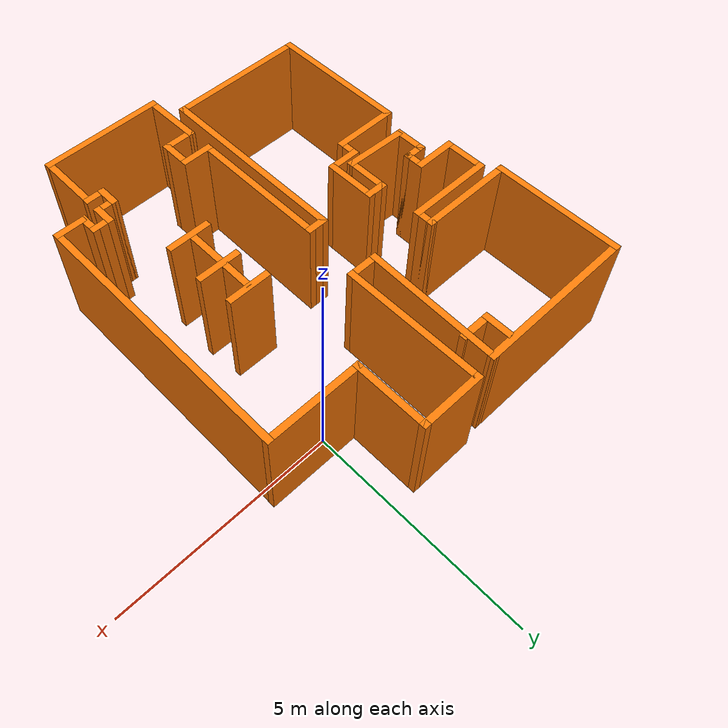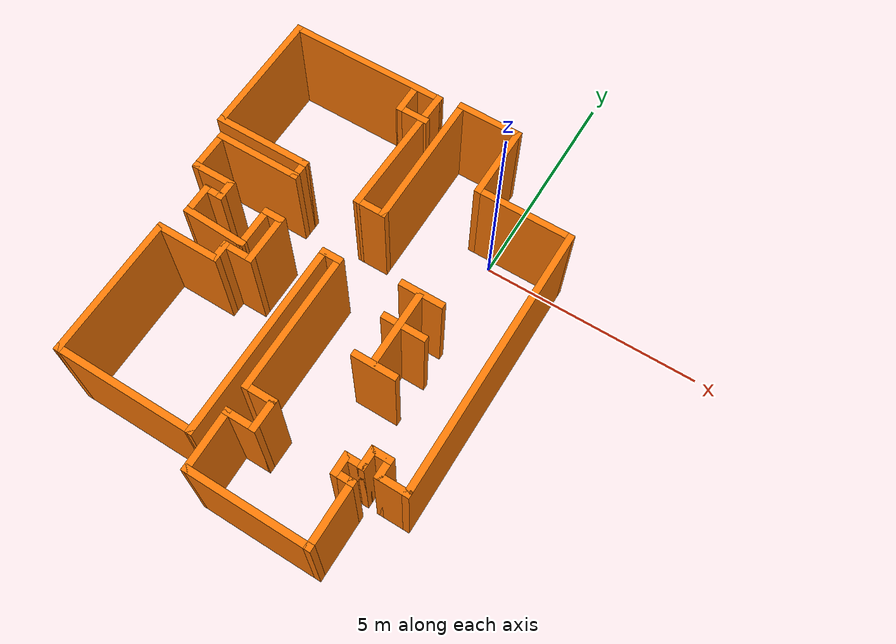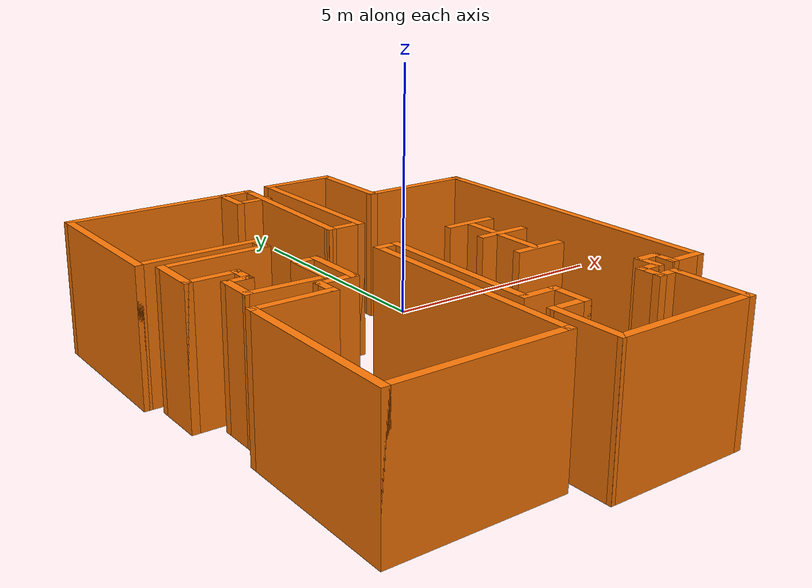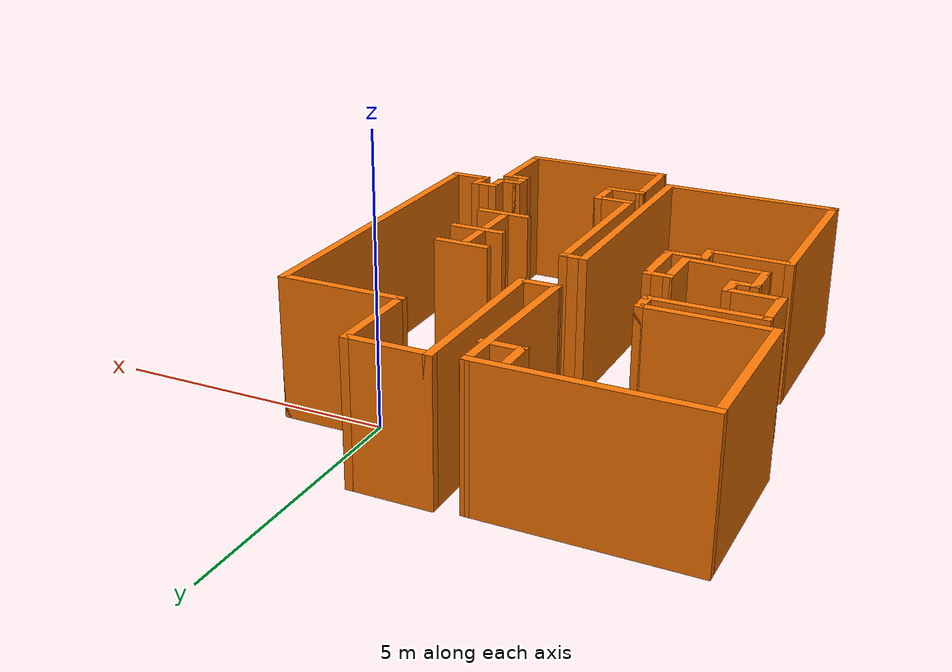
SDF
<?xml version='1.0'?>
<sdf version='1.6'>
  <model name='map_81'>
    <pose frame=''>-2.25854 -2.81927 0 0 -0 0</pose>
    <link name='Wall_0'>
      <collision name='Wall_0_Collision'>
        <geometry>
          <box>
            <size>3.75 0.15 2.5</size>
          </box>
        </geometry>
        <pose frame=''>0 0 1.25 0 -0 0</pose>
      </collision>
      <visual name='Wall_0_Visual'>
        <pose frame=''>0 0 1.25 0 -0 0</pose>
        <geometry>
          <box>
            <size>3.75 0.15 2.5</size>
          </box>
        </geometry>
        <material>
          <script>
            <uri>file://media/materials/scripts/gazebo.material</uri>
            <name>Gazebo/Grey</name>
          </script>
          <ambient>0.996078 0.47451 0.0196078 1</ambient>
        </material>
        <meta>
          <layer>0</layer>
        </meta>
      </visual>
      <pose frame=''>-1.98682 4.6059 0 0 -0 3.14159</pose>
    </link>
    <link name='Wall_1'>
      <collision name='Wall_1_Collision'>
        <geometry>
          <box>
            <size>3 0.15 2.5</size>
          </box>
        </geometry>
        <pose frame=''>0 0 1.25 0 -0 0</pose>
      </collision>
      <visual name='Wall_1_Visual'>
        <pose frame=''>0 0 1.25 0 -0 0</pose>
        <geometry>
          <box>
            <size>3 0.15 2.5</size>
          </box>
        </geometry>
        <material>
          <script>
            <uri>file://media/materials/scripts/gazebo.material</uri>
            <name>Gazebo/Grey</name>
          </script>
          <ambient>0.996078 0.47451 0.0196078 1</ambient>
        </material>
        <meta>
          <layer>0</layer>
        </meta>
      </visual>
      <pose frame=''>-3.78682 3.1809 0 0 -0 -1.5708</pose>
    </link>
    <link name='Wall_10'>
      <collision name='Wall_10_Collision'>
        <geometry>
          <box>
            <size>1 0.15 2.5</size>
          </box>
        </geometry>
        <pose frame=''>0 0 1.25 0 -0 0</pose>
      </collision>
      <visual name='Wall_10_Visual'>
        <pose frame=''>0 0 1.25 0 -0 0</pose>
        <geometry>
          <box>
            <size>1 0.15 2.5</size>
          </box>
        </geometry>
        <material>
          <script>
            <uri>file://media/materials/scripts/gazebo.material</uri>
            <name>Gazebo/Grey</name>
          </script>
          <ambient>0.996078 0.47451 0.0196078 1</ambient>
        </material>
        <meta>
          <layer>0</layer>
        </meta>
      </visual>
      <pose frame=''>-3.11182 0.555897 0 0 -0 0</pose>
    </link>
    <link name='Wall_11'>
      <collision name='Wall_11_Collision'>
        <geometry>
          <box>
            <size>0.5 0.15 2.5</size>
          </box>
        </geometry>
        <pose frame=''>0 0 1.25 0 -0 0</pose>
      </collision>
      <visual name='Wall_11_Visual'>
        <pose frame=''>0 0 1.25 0 -0 0</pose>
        <geometry>
          <box>
            <size>0.5 0.15 2.5</size>
          </box>
        </geometry>
        <material>
          <script>
            <uri>file://media/materials/scripts/gazebo.material</uri>
            <name>Gazebo/Grey</name>
          </script>
          <ambient>0.996078 0.47451 0.0196078 1</ambient>
        </material>
        <meta>
          <layer>0</layer>
        </meta>
      </visual>
      <pose frame=''>-2.68682 0.380897 0 0 -0 -1.5708</pose>
    </link>
    <link name='Wall_12'>
      <collision name='Wall_12_Collision'>
        <geometry>
          <box>
            <size>0.5 0.15 2.5</size>
          </box>
        </geometry>
        <pose frame=''>0 0 1.25 0 -0 0</pose>
      </collision>
      <visual name='Wall_12_Visual'>
        <pose frame=''>0 0 1.25 0 -0 0</pose>
        <geometry>
          <box>
            <size>0.5 0.15 2.5</size>
          </box>
        </geometry>
        <material>
          <script>
            <uri>file://media/materials/scripts/gazebo.material</uri>
            <name>Gazebo/Grey</name>
          </script>
          <ambient>0.996078 0.47451 0.0196078 1</ambient>
        </material>
        <meta>
          <layer>0</layer>
        </meta>
      </visual>
      <pose frame=''>-2.86182 0.205897 0 0 -0 3.14159</pose>
    </link>
    <link name='Wall_13'>
      <collision name='Wall_13_Collision'>
        <geometry>
          <box>
            <size>0.75 0.15 2.5</size>
          </box>
        </geometry>
        <pose frame=''>0 0 1.25 0 -0 0</pose>
      </collision>
      <visual name='Wall_13_Visual'>
        <pose frame=''>0 0 1.25 0 -0 0</pose>
        <geometry>
          <box>
            <size>0.75 0.15 2.5</size>
          </box>
        </geometry>
        <material>
          <script>
            <uri>file://media/materials/scripts/gazebo.material</uri>
            <name>Gazebo/Grey</name>
          </script>
          <ambient>0.996078 0.47451 0.0196078 1</ambient>
        </material>
        <meta>
          <layer>0</layer>
        </meta>
      </visual>
      <pose frame=''>-3.03682 -0.094103 0 0 -0 -1.5708</pose>
    </link>
    <link name='Wall_14'>
      <collision name='Wall_14_Collision'>
        <geometry>
          <box>
            <size>1.50105 0.15 2.5</size>
          </box>
        </geometry>
        <pose frame=''>0 0 1.25 0 -0 0</pose>
      </collision>
      <visual name='Wall_14_Visual'>
        <pose frame=''>0 0 1.25 0 -0 0</pose>
        <geometry>
          <box>
            <size>1.50105 0.15 2.5</size>
          </box>
        </geometry>
        <material>
          <script>
            <uri>file://media/materials/scripts/gazebo.material</uri>
            <name>Gazebo/Grey</name>
          </script>
          <ambient>0.996078 0.47451 0.0196078 1</ambient>
        </material>
        <meta>
          <layer>0</layer>
        </meta>
      </visual>
      <pose frame=''>-2.36182 -0.420703 0 0 -0 -0.039387</pose>
    </link>
    <link name='Wall_18'>
      <collision name='Wall_18_Collision'>
        <geometry>
          <box>
            <size>0.75 0.15 2.5</size>
          </box>
        </geometry>
        <pose frame=''>0 0 1.25 0 -0 0</pose>
      </collision>
      <visual name='Wall_18_Visual'>
        <pose frame=''>0 0 1.25 0 -0 0</pose>
        <geometry>
          <box>
            <size>0.75 0.15 2.5</size>
          </box>
        </geometry>
        <material>
          <script>
            <uri>file://media/materials/scripts/gazebo.material</uri>
            <name>Gazebo/Grey</name>
          </script>
          <ambient>0.996078 0.47451 0.0196078 1</ambient>
        </material>
        <meta>
          <layer>0</layer>
        </meta>
      </visual>
      <pose frame=''>-1.63682 -0.644103 0 0 -0 3.14159</pose>
    </link>
    <link name='Wall_19'>
      <collision name='Wall_19_Collision'>
        <geometry>
          <box>
            <size>0.5 0.15 2.5</size>
          </box>
        </geometry>
        <pose frame=''>0 0 1.25 0 -0 0</pose>
      </collision>
      <visual name='Wall_19_Visual'>
        <pose frame=''>0 0 1.25 0 -0 0</pose>
        <geometry>
          <box>
            <size>0.5 0.15 2.5</size>
          </box>
        </geometry>
        <material>
          <script>
            <uri>file://media/materials/scripts/gazebo.material</uri>
            <name>Gazebo/Grey</name>
          </script>
          <ambient>0.996078 0.47451 0.0196078 1</ambient>
        </material>
        <meta>
          <layer>0</layer>
        </meta>
      </visual>
      <pose frame=''>-1.93682 -0.819103 0 0 -0 -1.5708</pose>
    </link>
    <link name='Wall_2'>
      <collision name='Wall_2_Collision'>
        <geometry>
          <box>
            <size>2.25 0.15 2.5</size>
          </box>
        </geometry>
        <pose frame=''>0 0 1.25 0 -0 0</pose>
      </collision>
      <visual name='Wall_2_Visual'>
        <pose frame=''>0 0 1.25 0 -0 0</pose>
        <geometry>
          <box>
            <size>2.25 0.15 2.5</size>
          </box>
        </geometry>
        <material>
          <script>
            <uri>file://media/materials/scripts/gazebo.material</uri>
            <name>Gazebo/Grey</name>
          </script>
          <ambient>0.996078 0.47451 0.0196078 1</ambient>
        </material>
        <meta>
          <layer>0</layer>
        </meta>
      </visual>
      <pose frame=''>-2.73682 1.7559 0 0 -0 0</pose>
    </link>
    <link name='Wall_20'>
      <collision name='Wall_20_Collision'>
        <geometry>
          <box>
            <size>1.5 0.15 2.5</size>
          </box>
        </geometry>
        <pose frame=''>0 0 1.25 0 -0 0</pose>
      </collision>
      <visual name='Wall_20_Visual'>
        <pose frame=''>0 0 1.25 0 -0 0</pose>
        <geometry>
          <box>
            <size>1.5 0.15 2.5</size>
          </box>
        </geometry>
        <material>
          <script>
            <uri>file://media/materials/scripts/gazebo.material</uri>
            <name>Gazebo/Grey</name>
          </script>
          <ambient>0.996078 0.47451 0.0196078 1</ambient>
        </material>
        <meta>
          <layer>0</layer>
        </meta>
      </visual>
      <pose frame=''>-2.61182 -0.994103 0 0 -0 3.14159</pose>
    </link>
    <link name='Wall_21'>
      <collision name='Wall_21_Collision'>
        <geometry>
          <box>
            <size>3.25 0.15 2.5</size>
          </box>
        </geometry>
        <pose frame=''>0 0 1.25 0 -0 0</pose>
      </collision>
      <visual name='Wall_21_Visual'>
        <pose frame=''>0 0 1.25 0 -0 0</pose>
        <geometry>
          <box>
            <size>3.25 0.15 2.5</size>
          </box>
        </geometry>
        <material>
          <script>
            <uri>file://media/materials/scripts/gazebo.material</uri>
            <name>Gazebo/Grey</name>
          </script>
          <ambient>0.996078 0.47451 0.0196078 1</ambient>
        </material>
        <meta>
          <layer>0</layer>
        </meta>
      </visual>
      <pose frame=''>-3.28682 -2.5441 0 0 -0 -1.5708</pose>
    </link>
    <link name='Wall_22'>
      <collision name='Wall_22_Collision'>
        <geometry>
          <box>
            <size>3.25 0.15 2.5</size>
          </box>
        </geometry>
        <pose frame=''>0 0 1.25 0 -0 0</pose>
      </collision>
      <visual name='Wall_22_Visual'>
        <pose frame=''>0 0 1.25 0 -0 0</pose>
        <geometry>
          <box>
            <size>3.25 0.15 2.5</size>
          </box>
        </geometry>
        <material>
          <script>
            <uri>file://media/materials/scripts/gazebo.material</uri>
            <name>Gazebo/Grey</name>
          </script>
          <ambient>0.996078 0.47451 0.0196078 1</ambient>
        </material>
        <meta>
          <layer>0</layer>
        </meta>
      </visual>
      <pose frame=''>-1.73682 -4.0941 0 0 -0 0</pose>
    </link>
    <link name='Wall_23'>
      <collision name='Wall_23_Collision'>
        <geometry>
          <box>
            <size>4.5 0.15 2.5</size>
          </box>
        </geometry>
        <pose frame=''>0 0 1.25 0 -0 0</pose>
      </collision>
      <visual name='Wall_23_Visual'>
        <pose frame=''>0 0 1.25 0 -0 0</pose>
        <geometry>
          <box>
            <size>4.5 0.15 2.5</size>
          </box>
        </geometry>
        <material>
          <script>
            <uri>file://media/materials/scripts/gazebo.material</uri>
            <name>Gazebo/Grey</name>
          </script>
          <ambient>0.996078 0.47451 0.0196078 1</ambient>
        </material>
        <meta>
          <layer>0</layer>
        </meta>
      </visual>
      <pose frame=''>-0.186823 -1.9191 0 0 -0 1.5708</pose>
    </link>
    <link name='Wall_25'>
      <collision name='Wall_25_Collision'>
        <geometry>
          <box>
            <size>0.5 0.15 2.5</size>
          </box>
        </geometry>
        <pose frame=''>0 0 1.25 0 -0 0</pose>
      </collision>
      <visual name='Wall_25_Visual'>
        <pose frame=''>0 0 1.25 0 -0 0</pose>
        <geometry>
          <box>
            <size>0.5 0.15 2.5</size>
          </box>
        </geometry>
        <material>
          <script>
            <uri>file://media/materials/scripts/gazebo.material</uri>
            <name>Gazebo/Grey</name>
          </script>
          <ambient>0.996078 0.47451 0.0196078 1</ambient>
        </material>
        <meta>
          <layer>0</layer>
        </meta>
      </visual>
      <pose frame=''>-0.011823 0.255897 0 0 -0 0</pose>
    </link>
    <link name='Wall_26'>
      <collision name='Wall_26_Collision'>
        <geometry>
          <box>
            <size>3.25 0.15 2.5</size>
          </box>
        </geometry>
        <pose frame=''>0 0 1.25 0 -0 0</pose>
      </collision>
      <visual name='Wall_26_Visual'>
        <pose frame=''>0 0 1.25 0 -0 0</pose>
        <geometry>
          <box>
            <size>3.25 0.15 2.5</size>
          </box>
        </geometry>
        <material>
          <script>
            <uri>file://media/materials/scripts/gazebo.material</uri>
            <name>Gazebo/Grey</name>
          </script>
          <ambient>0.996078 0.47451 0.0196078 1</ambient>
        </material>
        <meta>
          <layer>0</layer>
        </meta>
      </visual>
      <pose frame=''>0.163177 -1.2941 0 0 -0 -1.5708</pose>
    </link>
    <link name='Wall_27'>
      <collision name='Wall_27_Collision'>
        <geometry>
          <box>
            <size>0.75 0.15 2.5</size>
          </box>
        </geometry>
        <pose frame=''>0 0 1.25 0 -0 0</pose>
      </collision>
      <visual name='Wall_27_Visual'>
        <pose frame=''>0 0 1.25 0 -0 0</pose>
        <geometry>
          <box>
            <size>0.75 0.15 2.5</size>
          </box>
        </geometry>
        <material>
          <script>
            <uri>file://media/materials/scripts/gazebo.material</uri>
            <name>Gazebo/Grey</name>
          </script>
          <ambient>0.996078 0.47451 0.0196078 1</ambient>
        </material>
        <meta>
          <layer>0</layer>
        </meta>
      </visual>
      <pose frame=''>0.463177 -2.8441 0 0 -0 0</pose>
    </link>
    <link name='Wall_28'>
      <collision name='Wall_28_Collision'>
        <geometry>
          <box>
            <size>0.75 0.15 2.5</size>
          </box>
        </geometry>
        <pose frame=''>0 0 1.25 0 -0 0</pose>
      </collision>
      <visual name='Wall_28_Visual'>
        <pose frame=''>0 0 1.25 0 -0 0</pose>
        <geometry>
          <box>
            <size>0.75 0.15 2.5</size>
          </box>
        </geometry>
        <material>
          <script>
            <uri>file://media/materials/scripts/gazebo.material</uri>
            <name>Gazebo/Grey</name>
          </script>
          <ambient>0.996078 0.47451 0.0196078 1</ambient>
        </material>
        <meta>
          <layer>0</layer>
        </meta>
      </visual>
      <pose frame=''>0.763177 -3.1441 0 0 -0 -1.5708</pose>
    </link>
    <link name='Wall_3'>
      <collision name='Wall_3_Collision'>
        <geometry>
          <box>
            <size>0.5 0.15 2.5</size>
          </box>
        </geometry>
        <pose frame=''>0 0 1.25 0 -0 0</pose>
      </collision>
      <visual name='Wall_3_Visual'>
        <pose frame=''>0 0 1.25 0 -0 0</pose>
        <geometry>
          <box>
            <size>0.5 0.15 2.5</size>
          </box>
        </geometry>
        <material>
          <script>
            <uri>file://media/materials/scripts/gazebo.material</uri>
            <name>Gazebo/Grey</name>
          </script>
          <ambient>0.996078 0.47451 0.0196078 1</ambient>
        </material>
        <meta>
          <layer>0</layer>
        </meta>
      </visual>
      <pose frame=''>-1.68682 1.5809 0 0 -0 -1.5708</pose>
    </link>
    <link name='Wall_33'>
      <collision name='Wall_33_Collision'>
        <geometry>
          <box>
            <size>2.80373 0.15 2.5</size>
          </box>
        </geometry>
        <pose frame=''>0 0 1.25 0 -0 0</pose>
      </collision>
      <visual name='Wall_33_Visual'>
        <pose frame=''>0 0 1.25 0 -0 0</pose>
        <geometry>
          <box>
            <size>2.80373 0.15 2.5</size>
          </box>
        </geometry>
        <material>
          <script>
            <uri>file://media/materials/scripts/gazebo.material</uri>
            <name>Gazebo/Grey</name>
          </script>
          <ambient>0.996078 0.47451 0.0196078 1</ambient>
        </material>
        <meta>
          <layer>0</layer>
        </meta>
      </visual>
      <pose frame=''>1.51022 -4.69939 0 0 -0 0</pose>
    </link>
    <link name='Wall_34'>
      <collision name='Wall_34_Collision'>
        <geometry>
          <box>
            <size>1.5 0.15 2.5</size>
          </box>
        </geometry>
        <pose frame=''>0 0 1.25 0 -0 0</pose>
      </collision>
      <visual name='Wall_34_Visual'>
        <pose frame=''>0 0 1.25 0 -0 0</pose>
        <geometry>
          <box>
            <size>1.5 0.15 2.5</size>
          </box>
        </geometry>
        <material>
          <script>
            <uri>file://media/materials/scripts/gazebo.material</uri>
            <name>Gazebo/Grey</name>
          </script>
          <ambient>0.996078 0.47451 0.0196078 1</ambient>
        </material>
        <meta>
          <layer>0</layer>
        </meta>
      </visual>
      <pose frame=''>2.83682 -4.0244 0 0 -0 1.5708</pose>
    </link>
    <link name='Wall_35'>
      <collision name='Wall_35_Collision'>
        <geometry>
          <box>
            <size>0.5 0.15 2.5</size>
          </box>
        </geometry>
        <pose frame=''>0 0 1.25 0 -0 0</pose>
      </collision>
      <visual name='Wall_35_Visual'>
        <pose frame=''>0 0 1.25 0 -0 0</pose>
        <geometry>
          <box>
            <size>0.5 0.15 2.5</size>
          </box>
        </geometry>
        <material>
          <script>
            <uri>file://media/materials/scripts/gazebo.material</uri>
            <name>Gazebo/Grey</name>
          </script>
          <ambient>0.996078 0.47451 0.0196078 1</ambient>
        </material>
        <meta>
          <layer>0</layer>
        </meta>
      </visual>
      <pose frame=''>2.66182 -3.34939 0 0 -0 3.14159</pose>
    </link>
    <link name='Wall_36'>
      <collision name='Wall_36_Collision'>
        <geometry>
          <box>
            <size>0.5 0.15 2.5</size>
          </box>
        </geometry>
        <pose frame=''>0 0 1.25 0 -0 0</pose>
      </collision>
      <visual name='Wall_36_Visual'>
        <pose frame=''>0 0 1.25 0 -0 0</pose>
        <geometry>
          <box>
            <size>0.5 0.15 2.5</size>
          </box>
        </geometry>
        <material>
          <script>
            <uri>file://media/materials/scripts/gazebo.material</uri>
            <name>Gazebo/Grey</name>
          </script>
          <ambient>0.996078 0.47451 0.0196078 1</ambient>
        </material>
        <meta>
          <layer>0</layer>
        </meta>
      </visual>
      <pose frame=''>2.48682 -3.17439 0 0 -0 1.5708</pose>
    </link>
    <link name='Wall_37'>
      <collision name='Wall_37_Collision'>
        <geometry>
          <box>
            <size>0.5 0.15 2.5</size>
          </box>
        </geometry>
        <pose frame=''>0 0 1.25 0 -0 0</pose>
      </collision>
      <visual name='Wall_37_Visual'>
        <pose frame=''>0 0 1.25 0 -0 0</pose>
        <geometry>
          <box>
            <size>0.5 0.15 2.5</size>
          </box>
        </geometry>
        <material>
          <script>
            <uri>file://media/materials/scripts/gazebo.material</uri>
            <name>Gazebo/Grey</name>
          </script>
          <ambient>0.996078 0.47451 0.0196078 1</ambient>
        </material>
        <meta>
          <layer>0</layer>
        </meta>
      </visual>
      <pose frame=''>2.66182 -2.99939 0 0 -0 0</pose>
    </link>
    <link name='Wall_38'>
      <collision name='Wall_38_Collision'>
        <geometry>
          <box>
            <size>0.5 0.15 2.5</size>
          </box>
        </geometry>
        <pose frame=''>0 0 1.25 0 -0 0</pose>
      </collision>
      <visual name='Wall_38_Visual'>
        <pose frame=''>0 0 1.25 0 -0 0</pose>
        <geometry>
          <box>
            <size>0.5 0.15 2.5</size>
          </box>
        </geometry>
        <material>
          <script>
            <uri>file://media/materials/scripts/gazebo.material</uri>
            <name>Gazebo/Grey</name>
          </script>
          <ambient>0.996078 0.47451 0.0196078 1</ambient>
        </material>
        <meta>
          <layer>0</layer>
        </meta>
      </visual>
      <pose frame=''>2.83682 -2.82439 0 0 -0 1.5708</pose>
    </link>
    <link name='Wall_39'>
      <collision name='Wall_39_Collision'>
        <geometry>
          <box>
            <size>0.5 0.15 2.5</size>
          </box>
        </geometry>
        <pose frame=''>0 0 1.25 0 -0 0</pose>
      </collision>
      <visual name='Wall_39_Visual'>
        <pose frame=''>0 0 1.25 0 -0 0</pose>
        <geometry>
          <box>
            <size>0.5 0.15 2.5</size>
          </box>
        </geometry>
        <material>
          <script>
            <uri>file://media/materials/scripts/gazebo.material</uri>
            <name>Gazebo/Grey</name>
          </script>
          <ambient>0.996078 0.47451 0.0196078 1</ambient>
        </material>
        <meta>
          <layer>0</layer>
        </meta>
      </visual>
      <pose frame=''>3.01182 -2.6494 0 0 -0 0</pose>
    </link>
    <link name='Wall_40'>
      <collision name='Wall_40_Collision'>
        <geometry>
          <box>
            <size>0.5 0.15 2.5</size>
          </box>
        </geometry>
        <pose frame=''>0 0 1.25 0 -0 0</pose>
      </collision>
      <visual name='Wall_40_Visual'>
        <pose frame=''>0 0 1.25 0 -0 0</pose>
        <geometry>
          <box>
            <size>0.5 0.15 2.5</size>
          </box>
        </geometry>
        <material>
          <script>
            <uri>file://media/materials/scripts/gazebo.material</uri>
            <name>Gazebo/Grey</name>
          </script>
          <ambient>0.996078 0.47451 0.0196078 1</ambient>
        </material>
        <meta>
          <layer>0</layer>
        </meta>
      </visual>
      <pose frame=''>3.18682 -2.82439 0 0 -0 -1.5708</pose>
    </link>
    <link name='Wall_41'>
      <collision name='Wall_41_Collision'>
        <geometry>
          <box>
            <size>0.75 0.15 2.5</size>
          </box>
        </geometry>
        <pose frame=''>0 0 1.25 0 -0 0</pose>
      </collision>
      <visual name='Wall_41_Visual'>
        <pose frame=''>0 0 1.25 0 -0 0</pose>
        <geometry>
          <box>
            <size>0.75 0.15 2.5</size>
          </box>
        </geometry>
        <material>
          <script>
            <uri>file://media/materials/scripts/gazebo.material</uri>
            <name>Gazebo/Grey</name>
          </script>
          <ambient>0.996078 0.47451 0.0196078 1</ambient>
        </material>
        <meta>
          <layer>0</layer>
        </meta>
      </visual>
      <pose frame=''>3.48682 -2.99939 0 0 -0 0</pose>
    </link>
    <link name='Wall_42'>
      <collision name='Wall_42_Collision'>
        <geometry>
          <box>
            <size>6.25 0.15 2.5</size>
          </box>
        </geometry>
        <pose frame=''>0 0 1.25 0 -0 0</pose>
      </collision>
      <visual name='Wall_42_Visual'>
        <pose frame=''>0 0 1.25 0 -0 0</pose>
        <geometry>
          <box>
            <size>6.25 0.15 2.5</size>
          </box>
        </geometry>
        <material>
          <script>
            <uri>file://media/materials/scripts/gazebo.material</uri>
            <name>Gazebo/Grey</name>
          </script>
          <ambient>0.996078 0.47451 0.0196078 1</ambient>
        </material>
        <meta>
          <layer>0</layer>
        </meta>
      </visual>
      <pose frame=''>3.78682 0.050606 0 0 -0 1.5708</pose>
    </link>
    <link name='Wall_43'>
      <collision name='Wall_43_Collision'>
        <geometry>
          <box>
            <size>2.25 0.15 2.5</size>
          </box>
        </geometry>
        <pose frame=''>0 0 1.25 0 -0 0</pose>
      </collision>
      <visual name='Wall_43_Visual'>
        <pose frame=''>0 0 1.25 0 -0 0</pose>
        <geometry>
          <box>
            <size>2.25 0.15 2.5</size>
          </box>
        </geometry>
        <material>
          <script>
            <uri>file://media/materials/scripts/gazebo.material</uri>
            <name>Gazebo/Grey</name>
          </script>
          <ambient>0.996078 0.47451 0.0196078 1</ambient>
        </material>
        <meta>
          <layer>0</layer>
        </meta>
      </visual>
      <pose frame=''>2.73682 3.10061 0 0 -0 3.14159</pose>
    </link>
    <link name='Wall_44'>
      <collision name='Wall_44_Collision'>
        <geometry>
          <box>
            <size>1.75 0.15 2.5</size>
          </box>
        </geometry>
        <pose frame=''>0 0 1.25 0 -0 0</pose>
      </collision>
      <visual name='Wall_44_Visual'>
        <pose frame=''>0 0 1.25 0 -0 0</pose>
        <geometry>
          <box>
            <size>1.75 0.15 2.5</size>
          </box>
        </geometry>
        <material>
          <script>
            <uri>file://media/materials/scripts/gazebo.material</uri>
            <name>Gazebo/Grey</name>
          </script>
          <ambient>0.996078 0.47451 0.0196078 1</ambient>
        </material>
        <meta>
          <layer>0</layer>
        </meta>
      </visual>
      <pose frame=''>1.68682 3.90061 0 0 -0 1.5708</pose>
    </link>
    <link name='Wall_45'>
      <collision name='Wall_45_Collision'>
        <geometry>
          <box>
            <size>1.5 0.15 2.5</size>
          </box>
        </geometry>
        <pose frame=''>0 0 1.25 0 -0 0</pose>
      </collision>
      <visual name='Wall_45_Visual'>
        <pose frame=''>0 0 1.25 0 -0 0</pose>
        <geometry>
          <box>
            <size>1.5 0.15 2.5</size>
          </box>
        </geometry>
        <material>
          <script>
            <uri>file://media/materials/scripts/gazebo.material</uri>
            <name>Gazebo/Grey</name>
          </script>
          <ambient>0.996078 0.47451 0.0196078 1</ambient>
        </material>
        <meta>
          <layer>0</layer>
        </meta>
      </visual>
      <pose frame=''>1.01182 4.70061 0 0 -0 3.14159</pose>
    </link>
    <link name='Wall_46'>
      <collision name='Wall_46_Collision'>
        <geometry>
          <box>
            <size>3.25 0.15 2.5</size>
          </box>
        </geometry>
        <pose frame=''>0 0 1.25 0 -0 0</pose>
      </collision>
      <visual name='Wall_46_Visual'>
        <pose frame=''>0 0 1.25 0 -0 0</pose>
        <geometry>
          <box>
            <size>3.25 0.15 2.5</size>
          </box>
        </geometry>
        <material>
          <script>
            <uri>file://media/materials/scripts/gazebo.material</uri>
            <name>Gazebo/Grey</name>
          </script>
          <ambient>0.996078 0.47451 0.0196078 1</ambient>
        </material>
        <meta>
          <layer>0</layer>
        </meta>
      </visual>
      <pose frame=''>0.336822 3.15061 0 0 -0 -1.5708</pose>
    </link>
    <link name='Wall_49'>
      <collision name='Wall_49_Collision'>
        <geometry>
          <box>
            <size>0.75 0.15 2.5</size>
          </box>
        </geometry>
        <pose frame=''>0 0 1.25 0 -0 0</pose>
      </collision>
      <visual name='Wall_49_Visual'>
        <pose frame=''>0 0 1.25 0 -0 0</pose>
        <geometry>
          <box>
            <size>0.75 0.15 2.5</size>
          </box>
        </geometry>
        <material>
          <script>
            <uri>file://media/materials/scripts/gazebo.material</uri>
            <name>Gazebo/Grey</name>
          </script>
          <ambient>0.996078 0.47451 0.0196078 1</ambient>
        </material>
        <meta>
          <layer>0</layer>
        </meta>
      </visual>
      <pose frame=''>0.036822 1.60061 0 0 -0 3.14159</pose>
    </link>
    <link name='Wall_50'>
      <collision name='Wall_50_Collision'>
        <geometry>
          <box>
            <size>3.15626 0.15 2.5</size>
          </box>
        </geometry>
        <pose frame=''>0 0 1.25 0 -0 0</pose>
      </collision>
      <visual name='Wall_50_Visual'>
        <pose frame=''>0 0 1.25 0 -0 0</pose>
        <geometry>
          <box>
            <size>3.15626 0.15 2.5</size>
          </box>
        </geometry>
        <material>
          <script>
            <uri>file://media/materials/scripts/gazebo.material</uri>
            <name>Gazebo/Grey</name>
          </script>
          <ambient>0.996078 0.47451 0.0196078 1</ambient>
        </material>
        <meta>
          <layer>0</layer>
        </meta>
      </visual>
      <pose frame=''>-0.225 3.10325 0 0 -0 1.5454</pose>
    </link>
    <link name='Wall_52'>
      <collision name='Wall_52_Collision'>
        <geometry>
          <box>
            <size>0.75 0.15 2.5</size>
          </box>
        </geometry>
        <pose frame=''>0 0 1.25 0 -0 0</pose>
      </collision>
      <visual name='Wall_52_Visual'>
        <pose frame=''>0 0 1.25 0 -0 0</pose>
        <geometry>
          <box>
            <size>0.75 0.15 2.5</size>
          </box>
        </geometry>
        <material>
          <script>
            <uri>file://media/materials/scripts/gazebo.material</uri>
            <name>Gazebo/Grey</name>
          </script>
          <ambient>0.996078 0.47451 0.0196078 1</ambient>
        </material>
        <meta>
          <layer>0</layer>
        </meta>
      </visual>
      <pose frame=''>-0.745427 4.2793 0 0 -0 -1.5708</pose>
    </link>
    <link name='Wall_55'>
      <collision name='Wall_55_Collision'>
        <geometry>
          <box>
            <size>0.75 0.15 2.5</size>
          </box>
        </geometry>
        <pose frame=''>0 0 1.25 0 -0 0</pose>
      </collision>
      <visual name='Wall_55_Visual'>
        <pose frame=''>0 0 1.25 0 -0 0</pose>
        <geometry>
          <box>
            <size>0.75 0.15 2.5</size>
          </box>
        </geometry>
        <material>
          <script>
            <uri>file://media/materials/scripts/gazebo.material</uri>
            <name>Gazebo/Grey</name>
          </script>
          <ambient>0.996078 0.47451 0.0196078 1</ambient>
        </material>
        <meta>
          <layer>0</layer>
        </meta>
      </visual>
      <pose frame=''>-0.445427 3.9793 0 0 -0 0</pose>
    </link>
    <link name='Wall_57'>
      <collision name='Wall_57_Collision'>
        <geometry>
          <box>
            <size>1 0.15 2.5</size>
          </box>
        </geometry>
        <pose frame=''>0 0 1.25 0 -0 0</pose>
      </collision>
      <visual name='Wall_57_Visual'>
        <pose frame=''>0 0 1.25 0 -0 0</pose>
        <geometry>
          <box>
            <size>1 0.15 2.5</size>
          </box>
        </geometry>
        <material>
          <script>
            <uri>file://media/materials/scripts/gazebo.material</uri>
            <name>Gazebo/Grey</name>
          </script>
          <ambient>0.996078 0.47451 0.0196078 1</ambient>
        </material>
        <meta>
          <layer>0</layer>
        </meta>
      </visual>
      <pose frame=''>-1.68682 -0.022303 0 0 -0 1.5708</pose>
    </link>
    <link name='Wall_58'>
      <collision name='Wall_58_Collision'>
        <geometry>
          <box>
            <size>0.5 0.15 2.5</size>
          </box>
        </geometry>
        <pose frame=''>0 0 1.25 0 -0 0</pose>
      </collision>
      <visual name='Wall_58_Visual'>
        <pose frame=''>0 0 1.25 0 -0 0</pose>
        <geometry>
          <box>
            <size>0.5 0.15 2.5</size>
          </box>
        </geometry>
        <material>
          <script>
            <uri>file://media/materials/scripts/gazebo.material</uri>
            <name>Gazebo/Grey</name>
          </script>
          <ambient>0.996078 0.47451 0.0196078 1</ambient>
        </material>
        <meta>
          <layer>0</layer>
        </meta>
      </visual>
      <pose frame=''>-1.51182 0.402696 0 0 -0 0</pose>
    </link>
    <link name='Wall_59'>
      <collision name='Wall_59_Collision'>
        <geometry>
          <box>
            <size>1.1968 0.15 2.5</size>
          </box>
        </geometry>
        <pose frame=''>0 0 1.25 0 -0 0</pose>
      </collision>
      <visual name='Wall_59_Visual'>
        <pose frame=''>0 0 1.25 0 -0 0</pose>
        <geometry>
          <box>
            <size>1.1968 0.15 2.5</size>
          </box>
        </geometry>
        <material>
          <script>
            <uri>file://media/materials/scripts/gazebo.material</uri>
            <name>Gazebo/Grey</name>
          </script>
          <ambient>0.996078 0.47451 0.0196078 1</ambient>
        </material>
        <meta>
          <layer>0</layer>
        </meta>
      </visual>
      <pose frame=''>-1.33682 -0.120703 0 0 -0 -1.5708</pose>
    </link>
    <link name='Wall_8'>
      <collision name='Wall_8_Collision'>
        <geometry>
          <box>
            <size>2 0.15 2.5</size>
          </box>
        </geometry>
        <pose frame=''>0 0 1.25 0 -0 0</pose>
      </collision>
      <visual name='Wall_8_Visual'>
        <pose frame=''>0 0 1.25 0 -0 0</pose>
        <geometry>
          <box>
            <size>2 0.15 2.5</size>
          </box>
        </geometry>
        <material>
          <script>
            <uri>file://media/materials/scripts/gazebo.material</uri>
            <name>Gazebo/Grey</name>
          </script>
          <ambient>0.996078 0.47451 0.0196078 1</ambient>
        </material>
        <meta>
          <layer>0</layer>
        </meta>
      </visual>
      <pose frame=''>-2.61182 1.4059 0 0 -0 3.14159</pose>
    </link>
    <link name='Wall_80'>
      <collision name='Wall_80_Collision'>
        <geometry>
          <box>
            <size>0.75 0.15 2.5</size>
          </box>
        </geometry>
        <pose frame=''>0 0 1.25 0 -0 0</pose>
      </collision>
      <visual name='Wall_80_Visual'>
        <pose frame=''>0 0 1.25 0 -0 0</pose>
        <geometry>
          <box>
            <size>0.75 0.15 2.5</size>
          </box>
        </geometry>
        <material>
          <script>
            <uri>file://media/materials/scripts/gazebo.material</uri>
            <name>Gazebo/Grey</name>
          </script>
          <ambient>0.996078 0.47451 0.0196078 1</ambient>
        </material>
        <meta>
          <layer>0</layer>
        </meta>
      </visual>
      <pose frame=''>0.463177 -3.4441 0 0 -0 3.14159</pose>
    </link>
    <link name='Wall_81'>
      <collision name='Wall_81_Collision'>
        <geometry>
          <box>
            <size>1.40546 0.15 2.5</size>
          </box>
        </geometry>
        <pose frame=''>0 0 1.25 0 -0 0</pose>
      </collision>
      <visual name='Wall_81_Visual'>
        <pose frame=''>0 0 1.25 0 -0 0</pose>
        <geometry>
          <box>
            <size>1.40546 0.15 2.5</size>
          </box>
        </geometry>
        <material>
          <script>
            <uri>file://media/materials/scripts/gazebo.material</uri>
            <name>Gazebo/Grey</name>
          </script>
          <ambient>0.996078 0.47451 0.0196078 1</ambient>
        </material>
        <meta>
          <layer>0</layer>
        </meta>
      </visual>
      <pose frame=''>0.1734 -4.07175 0 0 -0 -1.55451</pose>
    </link>
    <link name='Wall_9'>
      <collision name='Wall_9_Collision'>
        <geometry>
          <box>
            <size>1 0.15 2.5</size>
          </box>
        </geometry>
        <pose frame=''>0 0 1.25 0 -0 0</pose>
      </collision>
      <visual name='Wall_9_Visual'>
        <pose frame=''>0 0 1.25 0 -0 0</pose>
        <geometry>
          <box>
            <size>1 0.15 2.5</size>
          </box>
        </geometry>
        <material>
          <script>
            <uri>file://media/materials/scripts/gazebo.material</uri>
            <name>Gazebo/Grey</name>
          </script>
          <ambient>0.996078 0.47451 0.0196078 1</ambient>
        </material>
        <meta>
          <layer>0</layer>
        </meta>
      </visual>
      <pose frame=''>-3.53682 0.980897 0 0 -0 -1.5708</pose>
    </link>
    <link name='Wall_93'>
      <collision name='Wall_93_Collision'>
        <geometry>
          <box>
            <size>1 0.15 2.5</size>
          </box>
        </geometry>
        <pose frame=''>0 0 1.25 0 -0 0</pose>
      </collision>
      <visual name='Wall_93_Visual'>
        <pose frame=''>0 0 1.25 0 -0 0</pose>
        <geometry>
          <box>
            <size>1 0.15 2.5</size>
          </box>
        </geometry>
        <material>
          <script>
            <uri>file://media/materials/scripts/gazebo.material</uri>
            <name>Gazebo/Grey</name>
          </script>
          <ambient>0.996078 0.47451 0.0196078 1</ambient>
        </material>
        <meta>
          <layer>0</layer>
        </meta>
      </visual>
      <pose frame=''>1.94059 0.482866 0 0 -0 0</pose>
    </link>
    <link name='Wall_95'>
      <collision name='Wall_95_Collision'>
        <geometry>
          <box>
            <size>1.75 0.15 2.5</size>
          </box>
        </geometry>
        <pose frame=''>0 0 1.25 0 -0 0</pose>
      </collision>
      <visual name='Wall_95_Visual'>
        <pose frame=''>0 0 1.25 0 -0 0</pose>
        <geometry>
          <box>
            <size>1.75 0.15 2.5</size>
          </box>
        </geometry>
        <material>
          <script>
            <uri>file://media/materials/scripts/gazebo.material</uri>
            <name>Gazebo/Grey</name>
          </script>
          <ambient>0.996078 0.47451 0.0196078 1</ambient>
        </material>
        <meta>
          <layer>0</layer>
        </meta>
      </visual>
      <pose frame=''>1.91459 -0.396934 0 0 -0 -1.5708</pose>
    </link>
    <link name='Wall_97'>
      <collision name='Wall_97_Collision'>
        <geometry>
          <box>
            <size>1 0.15 2.5</size>
          </box>
        </geometry>
        <pose frame=''>0 0 1.25 0 -0 0</pose>
      </collision>
      <visual name='Wall_97_Visual'>
        <pose frame=''>0 0 1.25 0 -0 0</pose>
        <geometry>
          <box>
            <size>1 0.15 2.5</size>
          </box>
        </geometry>
        <material>
          <script>
            <uri>file://media/materials/scripts/gazebo.material</uri>
            <name>Gazebo/Grey</name>
          </script>
          <ambient>0.996078 0.47451 0.0196078 1</ambient>
        </material>
        <meta>
          <layer>0</layer>
        </meta>
      </visual>
      <pose frame=''>2.02039 -0.28854 0 0 -0 0</pose>
    </link>
    <link name='Wall_99'>
      <collision name='Wall_99_Collision'>
        <geometry>
          <box>
            <size>1 0.15 2.5</size>
          </box>
        </geometry>
        <pose frame=''>0 0 1.25 0 -0 0</pose>
      </collision>
      <visual name='Wall_99_Visual'>
        <pose frame=''>0 0 1.25 0 -0 0</pose>
        <geometry>
          <box>
            <size>1 0.15 2.5</size>
          </box>
        </geometry>
        <material>
          <script>
            <uri>file://media/materials/scripts/gazebo.material</uri>
            <name>Gazebo/Grey</name>
          </script>
          <ambient>0.996078 0.47451 0.0196078 1</ambient>
        </material>
        <meta>
          <layer>0</layer>
        </meta>
      </visual>
      <pose frame=''>1.96719 -1.24615 0 0 -0 0</pose>
    </link>
    <static>1</static>
  </model>
</sdf>
